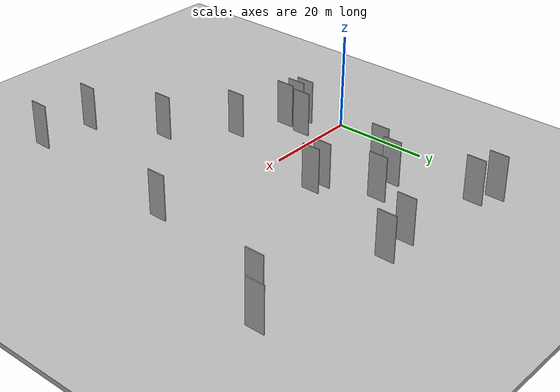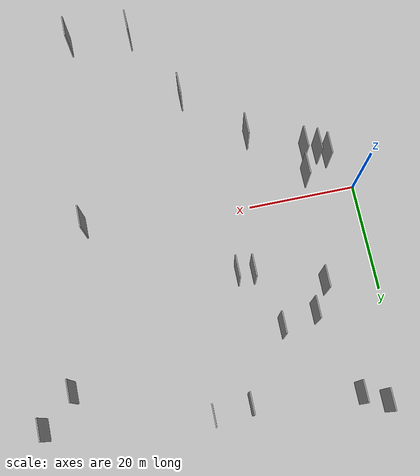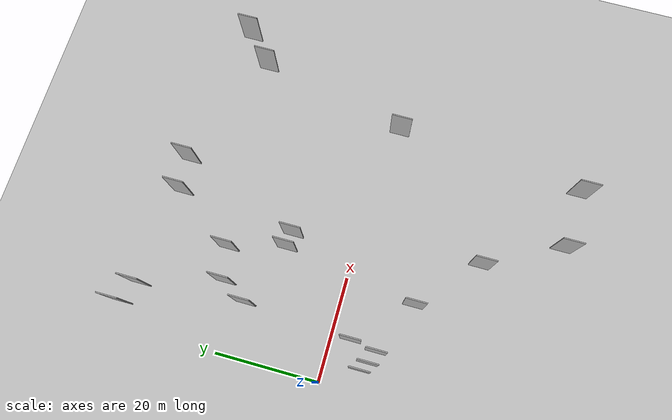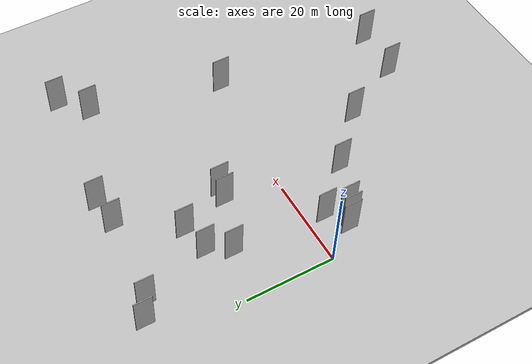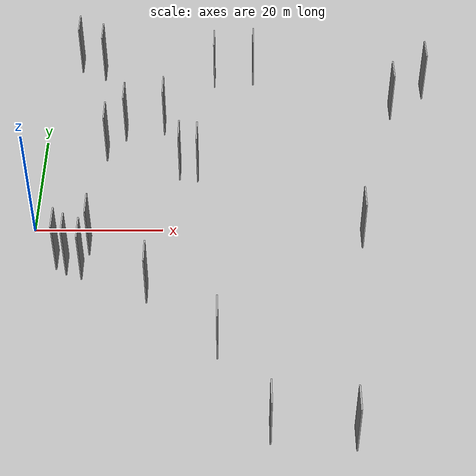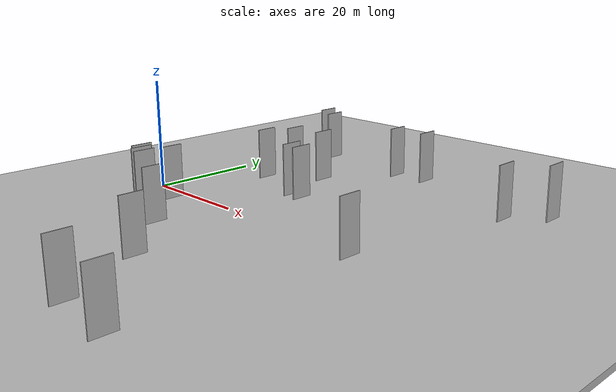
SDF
<?xml version="1.0" encoding="utf-8"?>

<sdf version="1.6">

   <world name="default">

      <gui fullscreen="0">

         <camera name="user_camera">

            <pose>-15 0 4.57585 0 0 0</pose>

            <view_controller>orbit</view_controller>

         </camera>

      </gui>

      <scene>

         <sky>

           <clouds>

             <speed>12</speed>

           </clouds>

         </sky>

         <ambient>0.4 0.4 0.4 1</ambient>

         <background>0.7 0.7 0.7 1</background>

         <shadows>1</shadows>

      </scene>

      <gravity>0 0 -9.8066</gravity>

      <magnetic_field>6e-06 2.3e-05 -4.2e-05</magnetic_field>

      <physics default="0" name="default_physics" type="ode">

         <ode>

            <solver>

               <type>quick</type>

               <iters>10</iters>

               <sor>1.0</sor>

               <use_dynamic_moi_rescaling>0</use_dynamic_moi_rescaling>

            </solver>

            <constraints>

               <cfm>0</cfm>

               <erp>0.2</erp>

               <contact_max_correcting_vel>100</contact_max_correcting_vel>

               <contact_surface_layer>0.001</contact_surface_layer>

            </constraints>

         </ode>

         <max_step_size>0.004</max_step_size>

         <real_time_factor>1</real_time_factor>

         <real_time_update_rate>250</real_time_update_rate>

      </physics>

      <light name="sun" type="directional">

         <cast_shadows>1</cast_shadows>

         <pose>0 0 10 0 0 0</pose>

         <diffuse>0.8 0.8 0.8 1</diffuse>

         <specular>0.2 0.2 0.2 1</specular>

         <attenuation>

            <range>1000</range>

            <constant>0.9</constant>

            <linear>0.01</linear>

            <quadratic>0.001</quadratic>

         </attenuation>

         <direction>-0.5 0.1 -0.9</direction>

      </light>

      <include>

         <name>ground_plane_1</name>

         <uri>model://HANNAS_ground_plane</uri>

         <pose>0 0 0  0 0 0</pose>

      </include>

      <include>

         <name>ground_plane_2</name>

         <uri>model://HANNAS_ground_plane</uri>

         <pose>100 0 0  0 0 0</pose>

      </include>

      <model name="HANNAS_wall_1">

         <static>1</static>

         <pose frame="">28.7479 -23.6160 0.0 0.000000 0.000000 1.570796</pose>

         <link name="link">

            <pose frame="">0 0 5.00 0 0 0</pose>

            <collision name="collision">

               <geometry>

                  <box>

                     <size>4.00 0.2 10.00</size>

                  </box>

               </geometry>

               <max_contacts>10</max_contacts>

               <surface>

                  <contact>

                     <ode/>

                  </contact>

                  <bounce/>

                  <friction>

                     <torsional>

                        <ode/>

                     </torsional>

                     <ode/>

                  </friction>

               </surface>

            </collision>

            <visual name="visual">

               <cast_shadows>0</cast_shadows>

               <geometry>

                  <box>

                     <size>4.00 0.2 10.00</size>

                  </box>

               </geometry>

               <material>

                  <script>

                     <uri>model://HANNAS_wall/materials/scripts</uri>

                     <uri>model://HANNAS_wall/materials/textures</uri>

                     <name>vrc/HANNAS_wall</name>

                  </script>

               </material>

            </visual>

            <self_collide>0</self_collide>

            <enable_wind>0</enable_wind>

            <kinematic>0</kinematic>

         </link>

      </model>

      <model name="HANNAS_wall_2">

         <static>1</static>

         <pose frame="">10.2868 17.2033 0.0 0.000000 0.000000 1.570796</pose>

         <link name="link">

            <pose frame="">0 0 5.00 0 0 0</pose>

            <collision name="collision">

               <geometry>

                  <box>

                     <size>4.00 0.2 10.00</size>

                  </box>

               </geometry>

               <max_contacts>10</max_contacts>

               <surface>

                  <contact>

                     <ode/>

                  </contact>

                  <bounce/>

                  <friction>

                     <torsional>

                        <ode/>

                     </torsional>

                     <ode/>

                  </friction>

               </surface>

            </collision>

            <visual name="visual">

               <cast_shadows>0</cast_shadows>

               <geometry>

                  <box>

                     <size>4.00 0.2 10.00</size>

                  </box>

               </geometry>

               <material>

                  <script>

                     <uri>model://HANNAS_wall/materials/scripts</uri>

                     <uri>model://HANNAS_wall/materials/textures</uri>

                     <name>vrc/HANNAS_wall</name>

                  </script>

               </material>

            </visual>

            <self_collide>0</self_collide>

            <enable_wind>0</enable_wind>

            <kinematic>0</kinematic>

         </link>

      </model>

      <model name="HANNAS_wall_3">

         <static>1</static>

         <pose frame="">4.4947 39.8140 0.0 0.000000 0.000000 1.570796</pose>

         <link name="link">

            <pose frame="">0 0 5.00 0 0 0</pose>

            <collision name="collision">

               <geometry>

                  <box>

                     <size>4.00 0.2 10.00</size>

                  </box>

               </geometry>

               <max_contacts>10</max_contacts>

               <surface>

                  <contact>

                     <ode/>

                  </contact>

                  <bounce/>

                  <friction>

                     <torsional>

                        <ode/>

                     </torsional>

                     <ode/>

                  </friction>

               </surface>

            </collision>

            <visual name="visual">

               <cast_shadows>0</cast_shadows>

               <geometry>

                  <box>

                     <size>4.00 0.2 10.00</size>

                  </box>

               </geometry>

               <material>

                  <script>

                     <uri>model://HANNAS_wall/materials/scripts</uri>

                     <uri>model://HANNAS_wall/materials/textures</uri>

                     <name>vrc/HANNAS_wall</name>

                  </script>

               </material>

            </visual>

            <self_collide>0</self_collide>

            <enable_wind>0</enable_wind>

            <kinematic>0</kinematic>

         </link>

      </model>

      <model name="HANNAS_wall_4">

         <static>1</static>

         <pose frame="">8.0867 -8.6147 0.0 0.000000 0.000000 1.570796</pose>

         <link name="link">

            <pose frame="">0 0 5.00 0 0 0</pose>

            <collision name="collision">

               <geometry>

                  <box>

                     <size>4.00 0.2 10.00</size>

                  </box>

               </geometry>

               <max_contacts>10</max_contacts>

               <surface>

                  <contact>

                     <ode/>

                  </contact>

                  <bounce/>

                  <friction>

                     <torsional>

                        <ode/>

                     </torsional>

                     <ode/>

                  </friction>

               </surface>

            </collision>

            <visual name="visual">

               <cast_shadows>0</cast_shadows>

               <geometry>

                  <box>

                     <size>4.00 0.2 10.00</size>

                  </box>

               </geometry>

               <material>

                  <script>

                     <uri>model://HANNAS_wall/materials/scripts</uri>

                     <uri>model://HANNAS_wall/materials/textures</uri>

                     <name>vrc/HANNAS_wall</name>

                  </script>

               </material>

            </visual>

            <self_collide>0</self_collide>

            <enable_wind>0</enable_wind>

            <kinematic>0</kinematic>

         </link>

      </model>

      <model name="HANNAS_wall_5">

         <static>1</static>

         <pose frame="">25.2480 12.2914 0.0 0.000000 0.000000 1.570796</pose>

         <link name="link">

            <pose frame="">0 0 5.00 0 0 0</pose>

            <collision name="collision">

               <geometry>

                  <box>

                     <size>4.00 0.2 10.00</size>

                  </box>

               </geometry>

               <max_contacts>10</max_contacts>

               <surface>

                  <contact>

                     <ode/>

                  </contact>

                  <bounce/>

                  <friction>

                     <torsional>

                        <ode/>

                     </torsional>

                     <ode/>

                  </friction>

               </surface>

            </collision>

            <visual name="visual">

               <cast_shadows>0</cast_shadows>

               <geometry>

                  <box>

                     <size>4.00 0.2 10.00</size>

                  </box>

               </geometry>

               <material>

                  <script>

                     <uri>model://HANNAS_wall/materials/scripts</uri>

                     <uri>model://HANNAS_wall/materials/textures</uri>

                     <name>vrc/HANNAS_wall</name>

                  </script>

               </material>

            </visual>

            <self_collide>0</self_collide>

            <enable_wind>0</enable_wind>

            <kinematic>0</kinematic>

         </link>

      </model>

      <model name="HANNAS_wall_6">

         <static>1</static>

         <pose frame="">36.0500 -38.1346 0.0 0.000000 0.000000 1.570796</pose>

         <link name="link">

            <pose frame="">0 0 5.00 0 0 0</pose>

            <collision name="collision">

               <geometry>

                  <box>

                     <size>4.00 0.2 10.00</size>

                  </box>

               </geometry>

               <max_contacts>10</max_contacts>

               <surface>

                  <contact>

                     <ode/>

                  </contact>

                  <bounce/>

                  <friction>

                     <torsional>

                        <ode/>

                     </torsional>

                     <ode/>

                  </friction>

               </surface>

            </collision>

            <visual name="visual">

               <cast_shadows>0</cast_shadows>

               <geometry>

                  <box>

                     <size>4.00 0.2 10.00</size>

                  </box>

               </geometry>

               <material>

                  <script>

                     <uri>model://HANNAS_wall/materials/scripts</uri>

                     <uri>model://HANNAS_wall/materials/textures</uri>

                     <name>vrc/HANNAS_wall</name>

                  </script>

               </material>

            </visual>

            <self_collide>0</self_collide>

            <enable_wind>0</enable_wind>

            <kinematic>0</kinematic>

         </link>

      </model>

      <model name="HANNAS_wall_7">

         <static>1</static>

         <pose frame="">5.7290 -7.6844 0.0 0.000000 0.000000 1.570796</pose>

         <link name="link">

            <pose frame="">0 0 5.00 0 0 0</pose>

            <collision name="collision">

               <geometry>

                  <box>

                     <size>4.00 0.2 10.00</size>

                  </box>

               </geometry>

               <max_contacts>10</max_contacts>

               <surface>

                  <contact>

                     <ode/>

                  </contact>

                  <bounce/>

                  <friction>

                     <torsional>

                        <ode/>

                     </torsional>

                     <ode/>

                  </friction>

               </surface>

            </collision>

            <visual name="visual">

               <cast_shadows>0</cast_shadows>

               <geometry>

                  <box>

                     <size>4.00 0.2 10.00</size>

                  </box>

               </geometry>

               <material>

                  <script>

                     <uri>model://HANNAS_wall/materials/scripts</uri>

                     <uri>model://HANNAS_wall/materials/textures</uri>

                     <name>vrc/HANNAS_wall</name>

                  </script>

               </material>

            </visual>

            <self_collide>0</self_collide>

            <enable_wind>0</enable_wind>

            <kinematic>0</kinematic>

         </link>

      </model>

      <model name="HANNAS_wall_8">

         <static>1</static>

         <pose frame="">34.4323 36.3055 0.0 0.000000 0.000000 1.570796</pose>

         <link name="link">

            <pose frame="">0 0 5.00 0 0 0</pose>

            <collision name="collision">

               <geometry>

                  <box>

                     <size>4.00 0.2 10.00</size>

                  </box>

               </geometry>

               <max_contacts>10</max_contacts>

               <surface>

                  <contact>

                     <ode/>

                  </contact>

                  <bounce/>

                  <friction>

                     <torsional>

                        <ode/>

                     </torsional>

                     <ode/>

                  </friction>

               </surface>

            </collision>

            <visual name="visual">

               <cast_shadows>0</cast_shadows>

               <geometry>

                  <box>

                     <size>4.00 0.2 10.00</size>

                  </box>

               </geometry>

               <material>

                  <script>

                     <uri>model://HANNAS_wall/materials/scripts</uri>

                     <uri>model://HANNAS_wall/materials/textures</uri>

                     <name>vrc/HANNAS_wall</name>

                  </script>

               </material>

            </visual>

            <self_collide>0</self_collide>

            <enable_wind>0</enable_wind>

            <kinematic>0</kinematic>

         </link>

      </model>

      <model name="HANNAS_wall_9">

         <static>1</static>

         <pose frame="">22.3608 12.6694 0.0 0.000000 0.000000 1.570796</pose>

         <link name="link">

            <pose frame="">0 0 5.00 0 0 0</pose>

            <collision name="collision">

               <geometry>

                  <box>

                     <size>4.00 0.2 10.00</size>

                  </box>

               </geometry>

               <max_contacts>10</max_contacts>

               <surface>

                  <contact>

                     <ode/>

                  </contact>

                  <bounce/>

                  <friction>

                     <torsional>

                        <ode/>

                     </torsional>

                     <ode/>

                  </friction>

               </surface>

            </collision>

            <visual name="visual">

               <cast_shadows>0</cast_shadows>

               <geometry>

                  <box>

                     <size>4.00 0.2 10.00</size>

                  </box>

               </geometry>

               <material>

                  <script>

                     <uri>model://HANNAS_wall/materials/scripts</uri>

                     <uri>model://HANNAS_wall/materials/textures</uri>

                     <name>vrc/HANNAS_wall</name>

                  </script>

               </material>

            </visual>

            <self_collide>0</self_collide>

            <enable_wind>0</enable_wind>

            <kinematic>0</kinematic>

         </link>

      </model>

      <model name="HANNAS_wall_10">

         <static>1</static>

         <pose frame="">47.6991 -39.2031 0.0 0.000000 0.000000 1.570796</pose>

         <link name="link">

            <pose frame="">0 0 5.00 0 0 0</pose>

            <collision name="collision">

               <geometry>

                  <box>

                     <size>4.00 0.2 10.00</size>

                  </box>

               </geometry>

               <max_contacts>10</max_contacts>

               <surface>

                  <contact>

                     <ode/>

                  </contact>

                  <bounce/>

                  <friction>

                     <torsional>

                        <ode/>

                     </torsional>

                     <ode/>

                  </friction>

               </surface>

            </collision>

            <visual name="visual">

               <cast_shadows>0</cast_shadows>

               <geometry>

                  <box>

                     <size>4.00 0.2 10.00</size>

                  </box>

               </geometry>

               <material>

                  <script>

                     <uri>model://HANNAS_wall/materials/scripts</uri>

                     <uri>model://HANNAS_wall/materials/textures</uri>

                     <name>vrc/HANNAS_wall</name>

                  </script>

               </material>

            </visual>

            <self_collide>0</self_collide>

            <enable_wind>0</enable_wind>

            <kinematic>0</kinematic>

         </link>

      </model>

      <model name="HANNAS_wall_11">

         <static>1</static>

         <pose frame="">50.9780 -2.2594 0.0 0.000000 0.000000 1.570796</pose>

         <link name="link">

            <pose frame="">0 0 5.00 0 0 0</pose>

            <collision name="collision">

               <geometry>

                  <box>

                     <size>4.00 0.2 10.00</size>

                  </box>

               </geometry>

               <max_contacts>10</max_contacts>

               <surface>

                  <contact>

                     <ode/>

                  </contact>

                  <bounce/>

                  <friction>

                     <torsional>

                        <ode/>

                     </torsional>

                     <ode/>

                  </friction>

               </surface>

            </collision>

            <visual name="visual">

               <cast_shadows>0</cast_shadows>

               <geometry>

                  <box>

                     <size>4.00 0.2 10.00</size>

                  </box>

               </geometry>

               <material>

                  <script>

                     <uri>model://HANNAS_wall/materials/scripts</uri>

                     <uri>model://HANNAS_wall/materials/textures</uri>

                     <name>vrc/HANNAS_wall</name>

                  </script>

               </material>

            </visual>

            <self_collide>0</self_collide>

            <enable_wind>0</enable_wind>

            <kinematic>0</kinematic>

         </link>

      </model>

      <model name="HANNAS_wall_12">

         <static>1</static>

         <pose frame="">8.9017 -3.6279 0.0 0.000000 0.000000 1.570796</pose>

         <link name="link">

            <pose frame="">0 0 5.00 0 0 0</pose>

            <collision name="collision">

               <geometry>

                  <box>

                     <size>4.00 0.2 10.00</size>

                  </box>

               </geometry>

               <max_contacts>10</max_contacts>

               <surface>

                  <contact>

                     <ode/>

                  </contact>

                  <bounce/>

                  <friction>

                     <torsional>

                        <ode/>

                     </torsional>

                     <ode/>

                  </friction>

               </surface>

            </collision>

            <visual name="visual">

               <cast_shadows>0</cast_shadows>

               <geometry>

                  <box>

                     <size>4.00 0.2 10.00</size>

                  </box>

               </geometry>

               <material>

                  <script>

                     <uri>model://HANNAS_wall/materials/scripts</uri>

                     <uri>model://HANNAS_wall/materials/textures</uri>

                     <name>vrc/HANNAS_wall</name>

                  </script>

               </material>

            </visual>

            <self_collide>0</self_collide>

            <enable_wind>0</enable_wind>

            <kinematic>0</kinematic>

         </link>

      </model>

      <model name="HANNAS_wall_13">

         <static>1</static>

         <pose frame="">27.7600 35.6524 0.0 0.000000 0.000000 1.570796</pose>

         <link name="link">

            <pose frame="">0 0 5.00 0 0 0</pose>

            <collision name="collision">

               <geometry>

                  <box>

                     <size>4.00 0.2 10.00</size>

                  </box>

               </geometry>

               <max_contacts>10</max_contacts>

               <surface>

                  <contact>

                     <ode/>

                  </contact>

                  <bounce/>

                  <friction>

                     <torsional>

                        <ode/>

                     </torsional>

                     <ode/>

                  </friction>

               </surface>

            </collision>

            <visual name="visual">

               <cast_shadows>0</cast_shadows>

               <geometry>

                  <box>

                     <size>4.00 0.2 10.00</size>

                  </box>

               </geometry>

               <material>

                  <script>

                     <uri>model://HANNAS_wall/materials/scripts</uri>

                     <uri>model://HANNAS_wall/materials/textures</uri>

                     <name>vrc/HANNAS_wall</name>

                  </script>

               </material>

            </visual>

            <self_collide>0</self_collide>

            <enable_wind>0</enable_wind>

            <kinematic>0</kinematic>

         </link>

      </model>

      <model name="HANNAS_wall_14">

         <static>1</static>

         <pose frame="">19.4720 23.4705 0.0 0.000000 0.000000 1.570796</pose>

         <link name="link">

            <pose frame="">0 0 5.00 0 0 0</pose>

            <collision name="collision">

               <geometry>

                  <box>

                     <size>4.00 0.2 10.00</size>

                  </box>

               </geometry>

               <max_contacts>10</max_contacts>

               <surface>

                  <contact>

                     <ode/>

                  </contact>

                  <bounce/>

                  <friction>

                     <torsional>

                        <ode/>

                     </torsional>

                     <ode/>

                  </friction>

               </surface>

            </collision>

            <visual name="visual">

               <cast_shadows>0</cast_shadows>

               <geometry>

                  <box>

                     <size>4.00 0.2 10.00</size>

                  </box>

               </geometry>

               <material>

                  <script>

                     <uri>model://HANNAS_wall/materials/scripts</uri>

                     <uri>model://HANNAS_wall/materials/textures</uri>

                     <name>vrc/HANNAS_wall</name>

                  </script>

               </material>

            </visual>

            <self_collide>0</self_collide>

            <enable_wind>0</enable_wind>

            <kinematic>0</kinematic>

         </link>

      </model>

      <model name="HANNAS_wall_15">

         <static>1</static>

         <pose frame="">63.5516 32.5957 0.0 0.000000 0.000000 1.570796</pose>

         <link name="link">

            <pose frame="">0 0 5.00 0 0 0</pose>

            <collision name="collision">

               <geometry>

                  <box>

                     <size>4.00 0.2 10.00</size>

                  </box>

               </geometry>

               <max_contacts>10</max_contacts>

               <surface>

                  <contact>

                     <ode/>

                  </contact>

                  <bounce/>

                  <friction>

                     <torsional>

                        <ode/>

                     </torsional>

                     <ode/>

                  </friction>

               </surface>

            </collision>

            <visual name="visual">

               <cast_shadows>0</cast_shadows>

               <geometry>

                  <box>

                     <size>4.00 0.2 10.00</size>

                  </box>

               </geometry>

               <material>

                  <script>

                     <uri>model://HANNAS_wall/materials/scripts</uri>

                     <uri>model://HANNAS_wall/materials/textures</uri>

                     <name>vrc/HANNAS_wall</name>

                  </script>

               </material>

            </visual>

            <self_collide>0</self_collide>

            <enable_wind>0</enable_wind>

            <kinematic>0</kinematic>

         </link>

      </model>

      <model name="HANNAS_wall_16">

         <static>1</static>

         <pose frame="">18.1136 -13.2691 0.0 0.000000 0.000000 1.570796</pose>

         <link name="link">

            <pose frame="">0 0 5.00 0 0 0</pose>

            <collision name="collision">

               <geometry>

                  <box>

                     <size>4.00 0.2 10.00</size>

                  </box>

               </geometry>

               <max_contacts>10</max_contacts>

               <surface>

                  <contact>

                     <ode/>

                  </contact>

                  <bounce/>

                  <friction>

                     <torsional>

                        <ode/>

                     </torsional>

                     <ode/>

                  </friction>

               </surface>

            </collision>

            <visual name="visual">

               <cast_shadows>0</cast_shadows>

               <geometry>

                  <box>

                     <size>4.00 0.2 10.00</size>

                  </box>

               </geometry>

               <material>

                  <script>

                     <uri>model://HANNAS_wall/materials/scripts</uri>

                     <uri>model://HANNAS_wall/materials/textures</uri>

                     <name>vrc/HANNAS_wall</name>

                  </script>

               </material>

            </visual>

            <self_collide>0</self_collide>

            <enable_wind>0</enable_wind>

            <kinematic>0</kinematic>

         </link>

      </model>

      <model name="HANNAS_wall_17">

         <static>1</static>

         <pose frame="">4.1295 -6.5941 0.0 0.000000 0.000000 1.570796</pose>

         <link name="link">

            <pose frame="">0 0 5.00 0 0 0</pose>

            <collision name="collision">

               <geometry>

                  <box>

                     <size>4.00 0.2 10.00</size>

                  </box>

               </geometry>

               <max_contacts>10</max_contacts>

               <surface>

                  <contact>

                     <ode/>

                  </contact>

                  <bounce/>

                  <friction>

                     <torsional>

                        <ode/>

                     </torsional>

                     <ode/>

                  </friction>

               </surface>

            </collision>

            <visual name="visual">

               <cast_shadows>0</cast_shadows>

               <geometry>

                  <box>

                     <size>4.00 0.2 10.00</size>

                  </box>

               </geometry>

               <material>

                  <script>

                     <uri>model://HANNAS_wall/materials/scripts</uri>

                     <uri>model://HANNAS_wall/materials/textures</uri>

                     <name>vrc/HANNAS_wall</name>

                  </script>

               </material>

            </visual>

            <self_collide>0</self_collide>

            <enable_wind>0</enable_wind>

            <kinematic>0</kinematic>

         </link>

      </model>

      <model name="HANNAS_wall_18">

         <static>1</static>

         <pose frame="">57.6872 27.2830 0.0 0.000000 0.000000 1.570796</pose>

         <link name="link">

            <pose frame="">0 0 5.00 0 0 0</pose>

            <collision name="collision">

               <geometry>

                  <box>

                     <size>4.00 0.2 10.00</size>

                  </box>

               </geometry>

               <max_contacts>10</max_contacts>

               <surface>

                  <contact>

                     <ode/>

                  </contact>

                  <bounce/>

                  <friction>

                     <torsional>

                        <ode/>

                     </torsional>

                     <ode/>

                  </friction>

               </surface>

            </collision>

            <visual name="visual">

               <cast_shadows>0</cast_shadows>

               <geometry>

                  <box>

                     <size>4.00 0.2 10.00</size>

                  </box>

               </geometry>

               <material>

                  <script>

                     <uri>model://HANNAS_wall/materials/scripts</uri>

                     <uri>model://HANNAS_wall/materials/textures</uri>

                     <name>vrc/HANNAS_wall</name>

                  </script>

               </material>

            </visual>

            <self_collide>0</self_collide>

            <enable_wind>0</enable_wind>

            <kinematic>0</kinematic>

         </link>

      </model>

      <model name="HANNAS_wall_19">

         <static>1</static>

         <pose frame="">8.6319 37.5831 0.0 0.000000 0.000000 1.570796</pose>

         <link name="link">

            <pose frame="">0 0 5.00 0 0 0</pose>

            <collision name="collision">

               <geometry>

                  <box>

                     <size>4.00 0.2 10.00</size>

                  </box>

               </geometry>

               <max_contacts>10</max_contacts>

               <surface>

                  <contact>

                     <ode/>

                  </contact>

                  <bounce/>

                  <friction>

                     <torsional>

                        <ode/>

                     </torsional>

                     <ode/>

                  </friction>

               </surface>

            </collision>

            <visual name="visual">

               <cast_shadows>0</cast_shadows>

               <geometry>

                  <box>

                     <size>4.00 0.2 10.00</size>

                  </box>

               </geometry>

               <material>

                  <script>

                     <uri>model://HANNAS_wall/materials/scripts</uri>

                     <uri>model://HANNAS_wall/materials/textures</uri>

                     <name>vrc/HANNAS_wall</name>

                  </script>

               </material>

            </visual>

            <self_collide>0</self_collide>

            <enable_wind>0</enable_wind>

            <kinematic>0</kinematic>

         </link>

      </model>

      <model name="HANNAS_wall_20">

         <static>1</static>

         <pose frame="">13.1268 22.0799 0.0 0.000000 0.000000 1.570796</pose>

         <link name="link">

            <pose frame="">0 0 5.00 0 0 0</pose>

            <collision name="collision">

               <geometry>

                  <box>

                     <size>4.00 0.2 10.00</size>

                  </box>

               </geometry>

               <max_contacts>10</max_contacts>

               <surface>

                  <contact>

                     <ode/>

                  </contact>

                  <bounce/>

                  <friction>

                     <torsional>

                        <ode/>

                     </torsional>

                     <ode/>

                  </friction>

               </surface>

            </collision>

            <visual name="visual">

               <cast_shadows>0</cast_shadows>

               <geometry>

                  <box>

                     <size>4.00 0.2 10.00</size>

                  </box>

               </geometry>

               <material>

                  <script>

                     <uri>model://HANNAS_wall/materials/scripts</uri>

                     <uri>model://HANNAS_wall/materials/textures</uri>

                     <name>vrc/HANNAS_wall</name>

                  </script>

               </material>

            </visual>

            <self_collide>0</self_collide>

            <enable_wind>0</enable_wind>

            <kinematic>0</kinematic>

         </link>

      </model>

   </world>

</sdf>

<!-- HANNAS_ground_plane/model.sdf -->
<sdf version="1.4">
<model name="HANNAS_ground_plane">
  <static>true</static>
    <link name="link">
      <collision name="collision">
        <geometry>
          <plane>
            <normal>0 0 1</normal>
            <size>1000 1000</size>
          </plane>
        </geometry>
        <surface>
          <friction>
            <ode>
              <mu>100</mu>
              <mu2>50</mu2>
            </ode>
          </friction>
        </surface>
      </collision>
      <visual name="visual">
        <cast_shadows>false</cast_shadows>
        <geometry>
          <plane>
            <normal>0 0 1</normal>
            <size>1000 1000</size>
          </plane>
        </geometry>
        <material>
          <script>
            <uri>model://HANNAS_ground_plane/materials/scripts/HANNAS_ground_plane.material</uri>
	    <uri>model://HANNAS_ground_plane/materials/textures</uri>
            <name>HANNASGroundPlane/Image</name>
          </script>
        </material>
      </visual>
    </link>
  </model>
</sdf>
